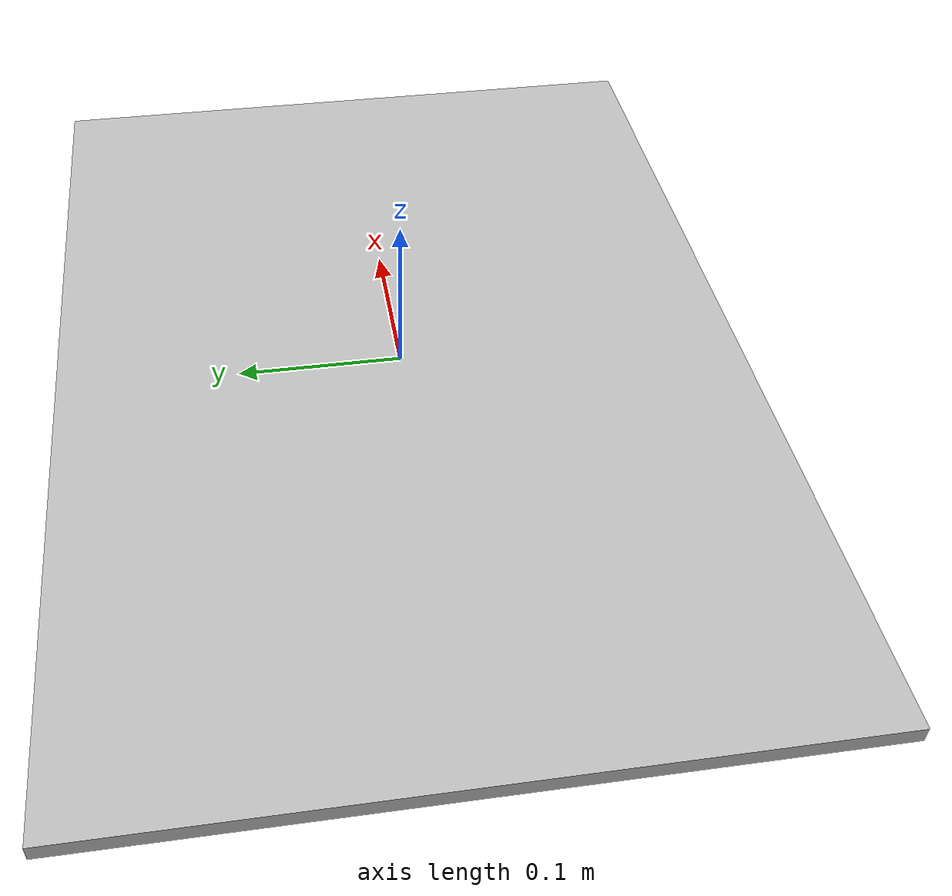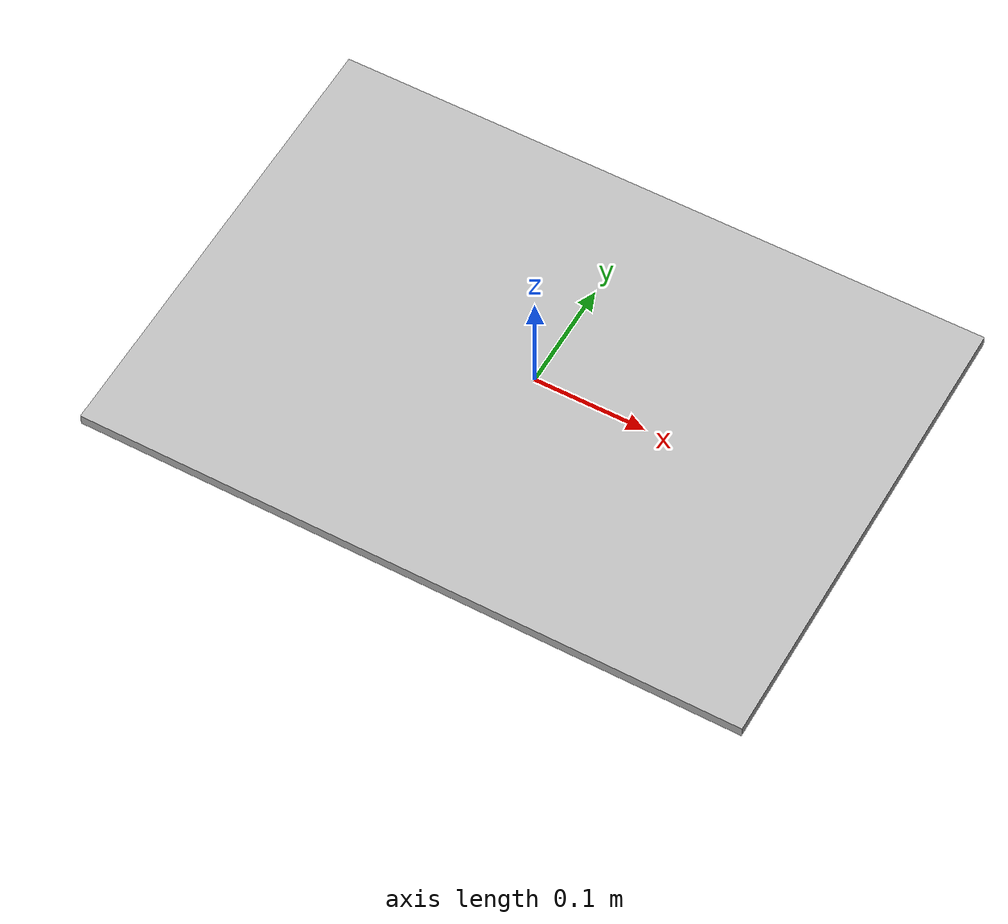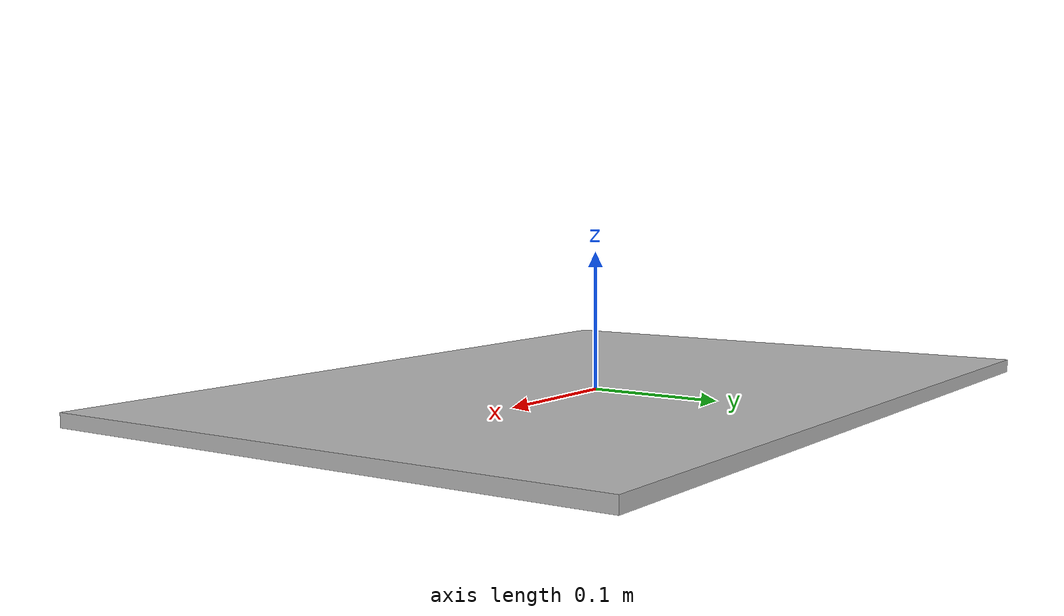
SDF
<?xml version="1.0" ?>
<sdf version="1.6">
  <model name="chessboard">
    <static>true</static>
    <link name="chessboard_link">
      <visual name="chessboard_visual">
        <geometry>
          <box>
            <size>0.594 0.42 0.01</size> <!-- A2 size with a small thickness -->
          </box>
        </geometry>
        <material>
          <script>
            <uri>file://media/materials/scripts/gazebo.material</uri>
            <name>Gazebo/Chessboard</name>
          </script>
          <texture>
            <diffuse>file://materials/textures/chessboard_10x7.ppm</diffuse>
          </texture>
        </material>
      </visual>
    </link>
  </model>
</sdf>
